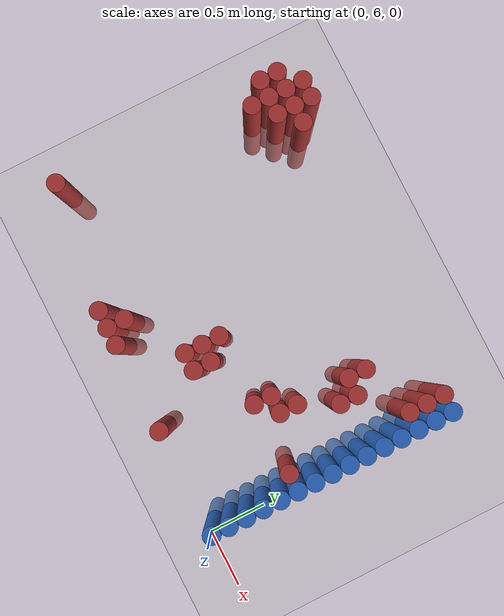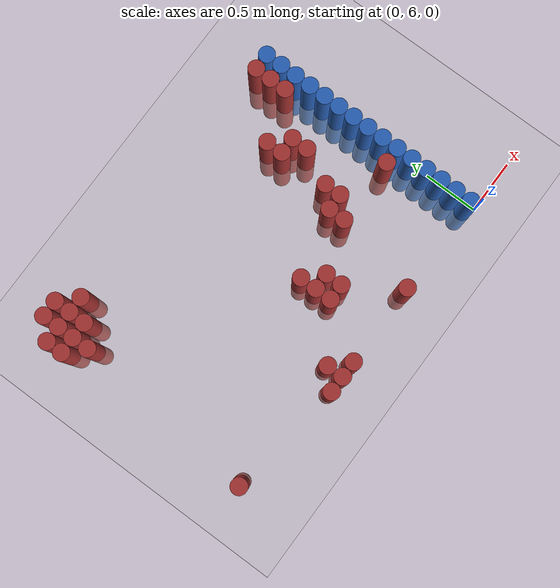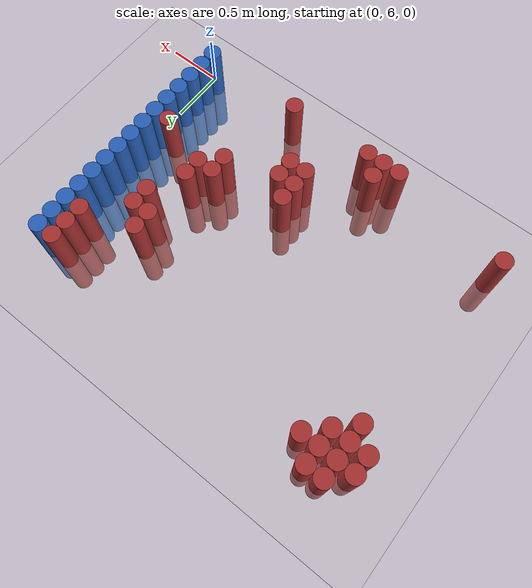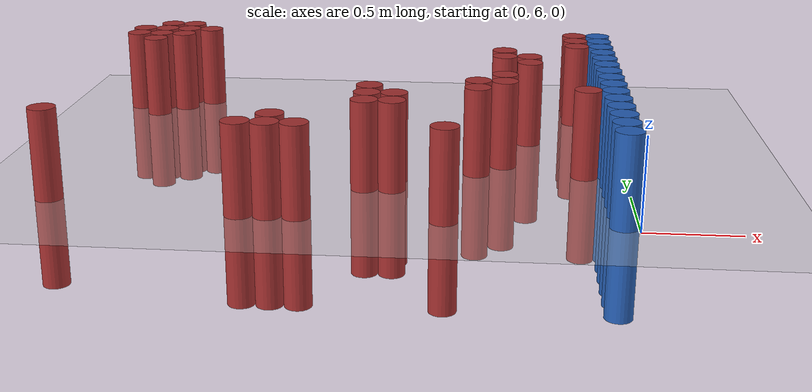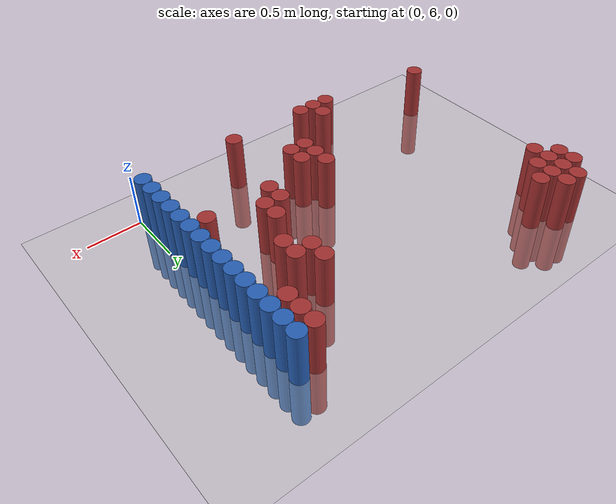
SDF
<sdf version="1.6">
 <world name="default">
  <model name="ground_plane">
   <static>1</static>
   <link name="link">
    <collision name="collision">
     <geometry><plane><normal>0 0 1</normal><size>100 100</size></plane></geometry>
     <surface><friction><ode><mu>100</mu><mu2>50</mu2></ode></friction></surface>
    </collision>
    <visual name="visual">
     <cast_shadows>0</cast_shadows>
     <geometry><plane><normal>0 0 1</normal><size>100 100</size></plane></geometry>
     <material>
      <script><uri>file://media/materials/scripts/gazebo.material</uri><name>Gazebo/Grey</name></script>
     </material>
    </visual>
   </link>
  </model>
  <model name="unit_cylinder_214">
   <static>1</static>
   <pose>-3.075000 6.225000 0.000000 0.000000 0.000000 0.000000</pose>
   <link name="link">
    <inertial>
     <mass>1</mass>
     <inertia><ixx>0.145833</ixx><ixy>0</ixy><ixz>0</ixz><iyy>0.145833</iyy><iyz>0</iyz><izz>0.125</izz></inertia>
    </inertial>
    <collision name="collision">
     <geometry><cylinder><radius>0.075000</radius><length>1</length></cylinder></geometry>
    </collision>
    <visual name="visual">
     <geometry><cylinder><radius>0.075000</radius><length>1</length></cylinder></geometry>
     <material>
      <ambient>0.648000 0.192000 0.192000 1</ambient>
      <diffuse>0.648000 0.192000 0.192000 1</diffuse>
     </material>
     <material>
      <script><name>Gazebo/Grey</name><uri>file://media/materials/scripts/gazebo.material</uri></script>
     </material>
    </visual>
   </link>
  </model>
  <model name="unit_cylinder_215">
   <static>1</static>
   <pose>-3.075000 8.025000 0.000000 0.000000 0.000000 0.000000</pose>
   <link name="link">
    <inertial>
     <mass>1</mass>
     <inertia><ixx>0.145833</ixx><ixy>0</ixy><ixz>0</ixz><iyy>0.145833</iyy><iyz>0</iyz><izz>0.125</izz></inertia>
    </inertial>
    <collision name="collision">
     <geometry><cylinder><radius>0.075000</radius><length>1</length></cylinder></geometry>
    </collision>
    <visual name="visual">
     <geometry><cylinder><radius>0.075000</radius><length>1</length></cylinder></geometry>
     <material>
      <ambient>0.648000 0.192000 0.192000 1</ambient>
      <diffuse>0.648000 0.192000 0.192000 1</diffuse>
     </material>
     <material>
      <script><name>Gazebo/Grey</name><uri>file://media/materials/scripts/gazebo.material</uri></script>
     </material>
    </visual>
   </link>
  </model>
  <model name="unit_cylinder_216">
   <static>1</static>
   <pose>-3.075000 8.175000 0.000000 0.000000 0.000000 0.000000</pose>
   <link name="link">
    <inertial>
     <mass>1</mass>
     <inertia><ixx>0.145833</ixx><ixy>0</ixy><ixz>0</ixz><iyy>0.145833</iyy><iyz>0</iyz><izz>0.125</izz></inertia>
    </inertial>
    <collision name="collision">
     <geometry><cylinder><radius>0.075000</radius><length>1</length></cylinder></geometry>
    </collision>
    <visual name="visual">
     <geometry><cylinder><radius>0.075000</radius><length>1</length></cylinder></geometry>
     <material>
      <ambient>0.648000 0.192000 0.192000 1</ambient>
      <diffuse>0.648000 0.192000 0.192000 1</diffuse>
     </material>
     <material>
      <script><name>Gazebo/Grey</name><uri>file://media/materials/scripts/gazebo.material</uri></script>
     </material>
    </visual>
   </link>
  </model>
  <model name="unit_cylinder_223">
   <static>1</static>
   <pose>-2.925000 7.875000 0.000000 0.000000 0.000000 0.000000</pose>
   <link name="link">
    <inertial>
     <mass>1</mass>
     <inertia><ixx>0.145833</ixx><ixy>0</ixy><ixz>0</ixz><iyy>0.145833</iyy><iyz>0</iyz><izz>0.125</izz></inertia>
    </inertial>
    <collision name="collision">
     <geometry><cylinder><radius>0.075000</radius><length>1</length></cylinder></geometry>
    </collision>
    <visual name="visual">
     <geometry><cylinder><radius>0.075000</radius><length>1</length></cylinder></geometry>
     <material>
      <ambient>0.648000 0.192000 0.192000 1</ambient>
      <diffuse>0.648000 0.192000 0.192000 1</diffuse>
     </material>
     <material>
      <script><name>Gazebo/Grey</name><uri>file://media/materials/scripts/gazebo.material</uri></script>
     </material>
    </visual>
   </link>
  </model>
  <model name="unit_cylinder_224">
   <static>1</static>
   <pose>-2.925000 8.025000 0.000000 0.000000 0.000000 0.000000</pose>
   <link name="link">
    <inertial>
     <mass>1</mass>
     <inertia><ixx>0.145833</ixx><ixy>0</ixy><ixz>0</ixz><iyy>0.145833</iyy><iyz>0</iyz><izz>0.125</izz></inertia>
    </inertial>
    <collision name="collision">
     <geometry><cylinder><radius>0.075000</radius><length>1</length></cylinder></geometry>
    </collision>
    <visual name="visual">
     <geometry><cylinder><radius>0.075000</radius><length>1</length></cylinder></geometry>
     <material>
      <ambient>0.648000 0.192000 0.192000 1</ambient>
      <diffuse>0.648000 0.192000 0.192000 1</diffuse>
     </material>
     <material>
      <script><name>Gazebo/Grey</name><uri>file://media/materials/scripts/gazebo.material</uri></script>
     </material>
    </visual>
   </link>
  </model>
  <model name="unit_cylinder_225">
   <static>1</static>
   <pose>-2.925000 8.175000 0.000000 0.000000 0.000000 0.000000</pose>
   <link name="link">
    <inertial>
     <mass>1</mass>
     <inertia><ixx>0.145833</ixx><ixy>0</ixy><ixz>0</ixz><iyy>0.145833</iyy><iyz>0</iyz><izz>0.125</izz></inertia>
    </inertial>
    <collision name="collision">
     <geometry><cylinder><radius>0.075000</radius><length>1</length></cylinder></geometry>
    </collision>
    <visual name="visual">
     <geometry><cylinder><radius>0.075000</radius><length>1</length></cylinder></geometry>
     <material>
      <ambient>0.648000 0.192000 0.192000 1</ambient>
      <diffuse>0.648000 0.192000 0.192000 1</diffuse>
     </material>
     <material>
      <script><name>Gazebo/Grey</name><uri>file://media/materials/scripts/gazebo.material</uri></script>
     </material>
    </visual>
   </link>
  </model>
  <model name="unit_cylinder_226">
   <static>1</static>
   <pose>-2.925000 8.325000 0.000000 0.000000 0.000000 0.000000</pose>
   <link name="link">
    <inertial>
     <mass>1</mass>
     <inertia><ixx>0.145833</ixx><ixy>0</ixy><ixz>0</ixz><iyy>0.145833</iyy><iyz>0</iyz><izz>0.125</izz></inertia>
    </inertial>
    <collision name="collision">
     <geometry><cylinder><radius>0.075000</radius><length>1</length></cylinder></geometry>
    </collision>
    <visual name="visual">
     <geometry><cylinder><radius>0.075000</radius><length>1</length></cylinder></geometry>
     <material>
      <ambient>0.648000 0.192000 0.192000 1</ambient>
      <diffuse>0.648000 0.192000 0.192000 1</diffuse>
     </material>
     <material>
      <script><name>Gazebo/Grey</name><uri>file://media/materials/scripts/gazebo.material</uri></script>
     </material>
    </visual>
   </link>
  </model>
  <model name="unit_cylinder_229">
   <static>1</static>
   <pose>-2.775000 8.025000 0.000000 0.000000 0.000000 0.000000</pose>
   <link name="link">
    <inertial>
     <mass>1</mass>
     <inertia><ixx>0.145833</ixx><ixy>0</ixy><ixz>0</ixz><iyy>0.145833</iyy><iyz>0</iyz><izz>0.125</izz></inertia>
    </inertial>
    <collision name="collision">
     <geometry><cylinder><radius>0.075000</radius><length>1</length></cylinder></geometry>
    </collision>
    <visual name="visual">
     <geometry><cylinder><radius>0.075000</radius><length>1</length></cylinder></geometry>
     <material>
      <ambient>0.648000 0.192000 0.192000 1</ambient>
      <diffuse>0.648000 0.192000 0.192000 1</diffuse>
     </material>
     <material>
      <script><name>Gazebo/Grey</name><uri>file://media/materials/scripts/gazebo.material</uri></script>
     </material>
    </visual>
   </link>
  </model>
  <model name="unit_cylinder_230">
   <static>1</static>
   <pose>-2.775000 8.175000 0.000000 0.000000 0.000000 0.000000</pose>
   <link name="link">
    <inertial>
     <mass>1</mass>
     <inertia><ixx>0.145833</ixx><ixy>0</ixy><ixz>0</ixz><iyy>0.145833</iyy><iyz>0</iyz><izz>0.125</izz></inertia>
    </inertial>
    <collision name="collision">
     <geometry><cylinder><radius>0.075000</radius><length>1</length></cylinder></geometry>
    </collision>
    <visual name="visual">
     <geometry><cylinder><radius>0.075000</radius><length>1</length></cylinder></geometry>
     <material>
      <ambient>0.648000 0.192000 0.192000 1</ambient>
      <diffuse>0.648000 0.192000 0.192000 1</diffuse>
     </material>
     <material>
      <script><name>Gazebo/Grey</name><uri>file://media/materials/scripts/gazebo.material</uri></script>
     </material>
    </visual>
   </link>
  </model>
  <model name="unit_cylinder_231">
   <static>1</static>
   <pose>-2.775000 8.325000 0.000000 0.000000 0.000000 0.000000</pose>
   <link name="link">
    <inertial>
     <mass>1</mass>
     <inertia><ixx>0.145833</ixx><ixy>0</ixy><ixz>0</ixz><iyy>0.145833</iyy><iyz>0</iyz><izz>0.125</izz></inertia>
    </inertial>
    <collision name="collision">
     <geometry><cylinder><radius>0.075000</radius><length>1</length></cylinder></geometry>
    </collision>
    <visual name="visual">
     <geometry><cylinder><radius>0.075000</radius><length>1</length></cylinder></geometry>
     <material>
      <ambient>0.648000 0.192000 0.192000 1</ambient>
      <diffuse>0.648000 0.192000 0.192000 1</diffuse>
     </material>
     <material>
      <script><name>Gazebo/Grey</name><uri>file://media/materials/scripts/gazebo.material</uri></script>
     </material>
    </visual>
   </link>
  </model>
  <model name="unit_cylinder_236">
   <static>1</static>
   <pose>-2.625000 8.175000 0.000000 0.000000 0.000000 0.000000</pose>
   <link name="link">
    <inertial>
     <mass>1</mass>
     <inertia><ixx>0.145833</ixx><ixy>0</ixy><ixz>0</ixz><iyy>0.145833</iyy><iyz>0</iyz><izz>0.125</izz></inertia>
    </inertial>
    <collision name="collision">
     <geometry><cylinder><radius>0.075000</radius><length>1</length></cylinder></geometry>
    </collision>
    <visual name="visual">
     <geometry><cylinder><radius>0.075000</radius><length>1</length></cylinder></geometry>
     <material>
      <ambient>0.648000 0.192000 0.192000 1</ambient>
      <diffuse>0.648000 0.192000 0.192000 1</diffuse>
     </material>
     <material>
      <script><name>Gazebo/Grey</name><uri>file://media/materials/scripts/gazebo.material</uri></script>
     </material>
    </visual>
   </link>
  </model>
  <model name="unit_cylinder_240">
   <static>1</static>
   <pose>-2.025000 6.075000 0.000000 0.000000 0.000000 0.000000</pose>
   <link name="link">
    <inertial>
     <mass>1</mass>
     <inertia><ixx>0.145833</ixx><ixy>0</ixy><ixz>0</ixz><iyy>0.145833</iyy><iyz>0</iyz><izz>0.125</izz></inertia>
    </inertial>
    <collision name="collision">
     <geometry><cylinder><radius>0.075000</radius><length>1</length></cylinder></geometry>
    </collision>
    <visual name="visual">
     <geometry><cylinder><radius>0.075000</radius><length>1</length></cylinder></geometry>
     <material>
      <ambient>0.648000 0.192000 0.192000 1</ambient>
      <diffuse>0.648000 0.192000 0.192000 1</diffuse>
     </material>
     <material>
      <script><name>Gazebo/Grey</name><uri>file://media/materials/scripts/gazebo.material</uri></script>
     </material>
    </visual>
   </link>
  </model>
  <model name="unit_cylinder_241">
   <static>1</static>
   <pose>-1.875000 6.075000 0.000000 0.000000 0.000000 0.000000</pose>
   <link name="link">
    <inertial>
     <mass>1</mass>
     <inertia><ixx>0.145833</ixx><ixy>0</ixy><ixz>0</ixz><iyy>0.145833</iyy><iyz>0</iyz><izz>0.125</izz></inertia>
    </inertial>
    <collision name="collision">
     <geometry><cylinder><radius>0.075000</radius><length>1</length></cylinder></geometry>
    </collision>
    <visual name="visual">
     <geometry><cylinder><radius>0.075000</radius><length>1</length></cylinder></geometry>
     <material>
      <ambient>0.648000 0.192000 0.192000 1</ambient>
      <diffuse>0.648000 0.192000 0.192000 1</diffuse>
     </material>
     <material>
      <script><name>Gazebo/Grey</name><uri>file://media/materials/scripts/gazebo.material</uri></script>
     </material>
    </visual>
   </link>
  </model>
  <model name="unit_cylinder_242">
   <static>1</static>
   <pose>-1.875000 6.225000 0.000000 0.000000 0.000000 0.000000</pose>
   <link name="link">
    <inertial>
     <mass>1</mass>
     <inertia><ixx>0.145833</ixx><ixy>0</ixy><ixz>0</ixz><iyy>0.145833</iyy><iyz>0</iyz><izz>0.125</izz></inertia>
    </inertial>
    <collision name="collision">
     <geometry><cylinder><radius>0.075000</radius><length>1</length></cylinder></geometry>
    </collision>
    <visual name="visual">
     <geometry><cylinder><radius>0.075000</radius><length>1</length></cylinder></geometry>
     <material>
      <ambient>0.648000 0.192000 0.192000 1</ambient>
      <diffuse>0.648000 0.192000 0.192000 1</diffuse>
     </material>
     <material>
      <script><name>Gazebo/Grey</name><uri>file://media/materials/scripts/gazebo.material</uri></script>
     </material>
    </visual>
   </link>
  </model>
  <model name="unit_cylinder_243">
   <static>1</static>
   <pose>-1.725000 6.075000 0.000000 0.000000 0.000000 0.000000</pose>
   <link name="link">
    <inertial>
     <mass>1</mass>
     <inertia><ixx>0.145833</ixx><ixy>0</ixy><ixz>0</ixz><iyy>0.145833</iyy><iyz>0</iyz><izz>0.125</izz></inertia>
    </inertial>
    <collision name="collision">
     <geometry><cylinder><radius>0.075000</radius><length>1</length></cylinder></geometry>
    </collision>
    <visual name="visual">
     <geometry><cylinder><radius>0.075000</radius><length>1</length></cylinder></geometry>
     <material>
      <ambient>0.648000 0.192000 0.192000 1</ambient>
      <diffuse>0.648000 0.192000 0.192000 1</diffuse>
     </material>
     <material>
      <script><name>Gazebo/Grey</name><uri>file://media/materials/scripts/gazebo.material</uri></script>
     </material>
    </visual>
   </link>
  </model>
  <model name="unit_cylinder_246">
   <static>1</static>
   <pose>-1.425000 6.525000 0.000000 0.000000 0.000000 0.000000</pose>
   <link name="link">
    <inertial>
     <mass>1</mass>
     <inertia><ixx>0.145833</ixx><ixy>0</ixy><ixz>0</ixz><iyy>0.145833</iyy><iyz>0</iyz><izz>0.125</izz></inertia>
    </inertial>
    <collision name="collision">
     <geometry><cylinder><radius>0.075000</radius><length>1</length></cylinder></geometry>
    </collision>
    <visual name="visual">
     <geometry><cylinder><radius>0.075000</radius><length>1</length></cylinder></geometry>
     <material>
      <ambient>0.648000 0.192000 0.192000 1</ambient>
      <diffuse>0.648000 0.192000 0.192000 1</diffuse>
     </material>
     <material>
      <script><name>Gazebo/Grey</name><uri>file://media/materials/scripts/gazebo.material</uri></script>
     </material>
    </visual>
   </link>
  </model>
  <model name="unit_cylinder_247">
   <static>1</static>
   <pose>-1.425000 6.675000 0.000000 0.000000 0.000000 0.000000</pose>
   <link name="link">
    <inertial>
     <mass>1</mass>
     <inertia><ixx>0.145833</ixx><ixy>0</ixy><ixz>0</ixz><iyy>0.145833</iyy><iyz>0</iyz><izz>0.125</izz></inertia>
    </inertial>
    <collision name="collision">
     <geometry><cylinder><radius>0.075000</radius><length>1</length></cylinder></geometry>
    </collision>
    <visual name="visual">
     <geometry><cylinder><radius>0.075000</radius><length>1</length></cylinder></geometry>
     <material>
      <ambient>0.648000 0.192000 0.192000 1</ambient>
      <diffuse>0.648000 0.192000 0.192000 1</diffuse>
     </material>
     <material>
      <script><name>Gazebo/Grey</name><uri>file://media/materials/scripts/gazebo.material</uri></script>
     </material>
    </visual>
   </link>
  </model>
  <model name="unit_cylinder_248">
   <static>1</static>
   <pose>-1.425000 6.825000 0.000000 0.000000 0.000000 0.000000</pose>
   <link name="link">
    <inertial>
     <mass>1</mass>
     <inertia><ixx>0.145833</ixx><ixy>0</ixy><ixz>0</ixz><iyy>0.145833</iyy><iyz>0</iyz><izz>0.125</izz></inertia>
    </inertial>
    <collision name="collision">
     <geometry><cylinder><radius>0.075000</radius><length>1</length></cylinder></geometry>
    </collision>
    <visual name="visual">
     <geometry><cylinder><radius>0.075000</radius><length>1</length></cylinder></geometry>
     <material>
      <ambient>0.648000 0.192000 0.192000 1</ambient>
      <diffuse>0.648000 0.192000 0.192000 1</diffuse>
     </material>
     <material>
      <script><name>Gazebo/Grey</name><uri>file://media/materials/scripts/gazebo.material</uri></script>
     </material>
    </visual>
   </link>
  </model>
  <model name="unit_cylinder_250">
   <static>1</static>
   <pose>-1.275000 6.525000 0.000000 0.000000 0.000000 0.000000</pose>
   <link name="link">
    <inertial>
     <mass>1</mass>
     <inertia><ixx>0.145833</ixx><ixy>0</ixy><ixz>0</ixz><iyy>0.145833</iyy><iyz>0</iyz><izz>0.125</izz></inertia>
    </inertial>
    <collision name="collision">
     <geometry><cylinder><radius>0.075000</radius><length>1</length></cylinder></geometry>
    </collision>
    <visual name="visual">
     <geometry><cylinder><radius>0.075000</radius><length>1</length></cylinder></geometry>
     <material>
      <ambient>0.648000 0.192000 0.192000 1</ambient>
      <diffuse>0.648000 0.192000 0.192000 1</diffuse>
     </material>
     <material>
      <script><name>Gazebo/Grey</name><uri>file://media/materials/scripts/gazebo.material</uri></script>
     </material>
    </visual>
   </link>
  </model>
  <model name="unit_cylinder_251">
   <static>1</static>
   <pose>-1.275000 6.675000 0.000000 0.000000 0.000000 0.000000</pose>
   <link name="link">
    <inertial>
     <mass>1</mass>
     <inertia><ixx>0.145833</ixx><ixy>0</ixy><ixz>0</ixz><iyy>0.145833</iyy><iyz>0</iyz><izz>0.125</izz></inertia>
    </inertial>
    <collision name="collision">
     <geometry><cylinder><radius>0.075000</radius><length>1</length></cylinder></geometry>
    </collision>
    <visual name="visual">
     <geometry><cylinder><radius>0.075000</radius><length>1</length></cylinder></geometry>
     <material>
      <ambient>0.648000 0.192000 0.192000 1</ambient>
      <diffuse>0.648000 0.192000 0.192000 1</diffuse>
     </material>
     <material>
      <script><name>Gazebo/Grey</name><uri>file://media/materials/scripts/gazebo.material</uri></script>
     </material>
    </visual>
   </link>
  </model>
  <model name="unit_cylinder_262">
   <static>1</static>
   <pose>-0.975000 6.075000 0.000000 0.000000 0.000000 0.000000</pose>
   <link name="link">
    <inertial>
     <mass>1</mass>
     <inertia><ixx>0.145833</ixx><ixy>0</ixy><ixz>0</ixz><iyy>0.145833</iyy><iyz>0</iyz><izz>0.125</izz></inertia>
    </inertial>
    <collision name="collision">
     <geometry><cylinder><radius>0.075000</radius><length>1</length></cylinder></geometry>
    </collision>
    <visual name="visual">
     <geometry><cylinder><radius>0.075000</radius><length>1</length></cylinder></geometry>
     <material>
      <ambient>0.648000 0.192000 0.192000 1</ambient>
      <diffuse>0.648000 0.192000 0.192000 1</diffuse>
     </material>
     <material>
      <script><name>Gazebo/Grey</name><uri>file://media/materials/scripts/gazebo.material</uri></script>
     </material>
    </visual>
   </link>
  </model>
  <model name="unit_cylinder_272">
   <static>1</static>
   <pose>-0.825000 6.825000 0.000000 0.000000 0.000000 0.000000</pose>
   <link name="link">
    <inertial>
     <mass>1</mass>
     <inertia><ixx>0.145833</ixx><ixy>0</ixy><ixz>0</ixz><iyy>0.145833</iyy><iyz>0</iyz><izz>0.125</izz></inertia>
    </inertial>
    <collision name="collision">
     <geometry><cylinder><radius>0.075000</radius><length>1</length></cylinder></geometry>
    </collision>
    <visual name="visual">
     <geometry><cylinder><radius>0.075000</radius><length>1</length></cylinder></geometry>
     <material>
      <ambient>0.648000 0.192000 0.192000 1</ambient>
      <diffuse>0.648000 0.192000 0.192000 1</diffuse>
     </material>
     <material>
      <script><name>Gazebo/Grey</name><uri>file://media/materials/scripts/gazebo.material</uri></script>
     </material>
    </visual>
   </link>
  </model>
  <model name="unit_cylinder_273">
   <static>1</static>
   <pose>-0.825000 6.975000 0.000000 0.000000 0.000000 0.000000</pose>
   <link name="link">
    <inertial>
     <mass>1</mass>
     <inertia><ixx>0.145833</ixx><ixy>0</ixy><ixz>0</ixz><iyy>0.145833</iyy><iyz>0</iyz><izz>0.125</izz></inertia>
    </inertial>
    <collision name="collision">
     <geometry><cylinder><radius>0.075000</radius><length>1</length></cylinder></geometry>
    </collision>
    <visual name="visual">
     <geometry><cylinder><radius>0.075000</radius><length>1</length></cylinder></geometry>
     <material>
      <ambient>0.648000 0.192000 0.192000 1</ambient>
      <diffuse>0.648000 0.192000 0.192000 1</diffuse>
     </material>
     <material>
      <script><name>Gazebo/Grey</name><uri>file://media/materials/scripts/gazebo.material</uri></script>
     </material>
    </visual>
   </link>
  </model>
  <model name="unit_cylinder_276">
   <static>1</static>
   <pose>-0.675000 6.975000 0.000000 0.000000 0.000000 0.000000</pose>
   <link name="link">
    <inertial>
     <mass>1</mass>
     <inertia><ixx>0.145833</ixx><ixy>0</ixy><ixz>0</ixz><iyy>0.145833</iyy><iyz>0</iyz><izz>0.125</izz></inertia>
    </inertial>
    <collision name="collision">
     <geometry><cylinder><radius>0.075000</radius><length>1</length></cylinder></geometry>
    </collision>
    <visual name="visual">
     <geometry><cylinder><radius>0.075000</radius><length>1</length></cylinder></geometry>
     <material>
      <ambient>0.648000 0.192000 0.192000 1</ambient>
      <diffuse>0.648000 0.192000 0.192000 1</diffuse>
     </material>
     <material>
      <script><name>Gazebo/Grey</name><uri>file://media/materials/scripts/gazebo.material</uri></script>
     </material>
    </visual>
   </link>
  </model>
  <model name="unit_cylinder_277">
   <static>1</static>
   <pose>-0.675000 7.125000 0.000000 0.000000 0.000000 0.000000</pose>
   <link name="link">
    <inertial>
     <mass>1</mass>
     <inertia><ixx>0.145833</ixx><ixy>0</ixy><ixz>0</ixz><iyy>0.145833</iyy><iyz>0</iyz><izz>0.125</izz></inertia>
    </inertial>
    <collision name="collision">
     <geometry><cylinder><radius>0.075000</radius><length>1</length></cylinder></geometry>
    </collision>
    <visual name="visual">
     <geometry><cylinder><radius>0.075000</radius><length>1</length></cylinder></geometry>
     <material>
      <ambient>0.648000 0.192000 0.192000 1</ambient>
      <diffuse>0.648000 0.192000 0.192000 1</diffuse>
     </material>
     <material>
      <script><name>Gazebo/Grey</name><uri>file://media/materials/scripts/gazebo.material</uri></script>
     </material>
    </visual>
   </link>
  </model>
  <model name="unit_cylinder_278">
   <static>1</static>
   <pose>-0.675000 7.575000 0.000000 0.000000 0.000000 0.000000</pose>
   <link name="link">
    <inertial>
     <mass>1</mass>
     <inertia><ixx>0.145833</ixx><ixy>0</ixy><ixz>0</ixz><iyy>0.145833</iyy><iyz>0</iyz><izz>0.125</izz></inertia>
    </inertial>
    <collision name="collision">
     <geometry><cylinder><radius>0.075000</radius><length>1</length></cylinder></geometry>
    </collision>
    <visual name="visual">
     <geometry><cylinder><radius>0.075000</radius><length>1</length></cylinder></geometry>
     <material>
      <ambient>0.648000 0.192000 0.192000 1</ambient>
      <diffuse>0.648000 0.192000 0.192000 1</diffuse>
     </material>
     <material>
      <script><name>Gazebo/Grey</name><uri>file://media/materials/scripts/gazebo.material</uri></script>
     </material>
    </visual>
   </link>
  </model>
  <model name="unit_cylinder_279">
   <static>1</static>
   <pose>-0.675000 7.725000 0.000000 0.000000 0.000000 0.000000</pose>
   <link name="link">
    <inertial>
     <mass>1</mass>
     <inertia><ixx>0.145833</ixx><ixy>0</ixy><ixz>0</ixz><iyy>0.145833</iyy><iyz>0</iyz><izz>0.125</izz></inertia>
    </inertial>
    <collision name="collision">
     <geometry><cylinder><radius>0.075000</radius><length>1</length></cylinder></geometry>
    </collision>
    <visual name="visual">
     <geometry><cylinder><radius>0.075000</radius><length>1</length></cylinder></geometry>
     <material>
      <ambient>0.648000 0.192000 0.192000 1</ambient>
      <diffuse>0.648000 0.192000 0.192000 1</diffuse>
     </material>
     <material>
      <script><name>Gazebo/Grey</name><uri>file://media/materials/scripts/gazebo.material</uri></script>
     </material>
    </visual>
   </link>
  </model>
  <model name="unit_cylinder_283">
   <static>1</static>
   <pose>-0.525000 7.425000 0.000000 0.000000 0.000000 0.000000</pose>
   <link name="link">
    <inertial>
     <mass>1</mass>
     <inertia><ixx>0.145833</ixx><ixy>0</ixy><ixz>0</ixz><iyy>0.145833</iyy><iyz>0</iyz><izz>0.125</izz></inertia>
    </inertial>
    <collision name="collision">
     <geometry><cylinder><radius>0.075000</radius><length>1</length></cylinder></geometry>
    </collision>
    <visual name="visual">
     <geometry><cylinder><radius>0.075000</radius><length>1</length></cylinder></geometry>
     <material>
      <ambient>0.648000 0.192000 0.192000 1</ambient>
      <diffuse>0.648000 0.192000 0.192000 1</diffuse>
     </material>
     <material>
      <script><name>Gazebo/Grey</name><uri>file://media/materials/scripts/gazebo.material</uri></script>
     </material>
    </visual>
   </link>
  </model>
  <model name="unit_cylinder_284">
   <static>1</static>
   <pose>-0.525000 7.575000 0.000000 0.000000 0.000000 0.000000</pose>
   <link name="link">
    <inertial>
     <mass>1</mass>
     <inertia><ixx>0.145833</ixx><ixy>0</ixy><ixz>0</ixz><iyy>0.145833</iyy><iyz>0</iyz><izz>0.125</izz></inertia>
    </inertial>
    <collision name="collision">
     <geometry><cylinder><radius>0.075000</radius><length>1</length></cylinder></geometry>
    </collision>
    <visual name="visual">
     <geometry><cylinder><radius>0.075000</radius><length>1</length></cylinder></geometry>
     <material>
      <ambient>0.648000 0.192000 0.192000 1</ambient>
      <diffuse>0.648000 0.192000 0.192000 1</diffuse>
     </material>
     <material>
      <script><name>Gazebo/Grey</name><uri>file://media/materials/scripts/gazebo.material</uri></script>
     </material>
    </visual>
   </link>
  </model>
  <model name="unit_cylinder_294">
   <static>1</static>
   <pose>-0.225000 6.825000 0.000000 0.000000 0.000000 0.000000</pose>
   <link name="link">
    <inertial>
     <mass>1</mass>
     <inertia><ixx>0.145833</ixx><ixy>0</ixy><ixz>0</ixz><iyy>0.145833</iyy><iyz>0</iyz><izz>0.125</izz></inertia>
    </inertial>
    <collision name="collision">
     <geometry><cylinder><radius>0.075000</radius><length>1</length></cylinder></geometry>
    </collision>
    <visual name="visual">
     <geometry><cylinder><radius>0.075000</radius><length>1</length></cylinder></geometry>
     <material>
      <ambient>0.648000 0.192000 0.192000 1</ambient>
      <diffuse>0.648000 0.192000 0.192000 1</diffuse>
     </material>
     <material>
      <script><name>Gazebo/Grey</name><uri>file://media/materials/scripts/gazebo.material</uri></script>
     </material>
    </visual>
   </link>
  </model>
  <model name="unit_cylinder_295">
   <static>1</static>
   <pose>-0.225000 7.875000 0.000000 0.000000 0.000000 0.000000</pose>
   <link name="link">
    <inertial>
     <mass>1</mass>
     <inertia><ixx>0.145833</ixx><ixy>0</ixy><ixz>0</ixz><iyy>0.145833</iyy><iyz>0</iyz><izz>0.125</izz></inertia>
    </inertial>
    <collision name="collision">
     <geometry><cylinder><radius>0.075000</radius><length>1</length></cylinder></geometry>
    </collision>
    <visual name="visual">
     <geometry><cylinder><radius>0.075000</radius><length>1</length></cylinder></geometry>
     <material>
      <ambient>0.648000 0.192000 0.192000 1</ambient>
      <diffuse>0.648000 0.192000 0.192000 1</diffuse>
     </material>
     <material>
      <script><name>Gazebo/Grey</name><uri>file://media/materials/scripts/gazebo.material</uri></script>
     </material>
    </visual>
   </link>
  </model>
  <model name="unit_cylinder_296">
   <static>1</static>
   <pose>-0.225000 8.025000 0.000000 0.000000 0.000000 0.000000</pose>
   <link name="link">
    <inertial>
     <mass>1</mass>
     <inertia><ixx>0.145833</ixx><ixy>0</ixy><ixz>0</ixz><iyy>0.145833</iyy><iyz>0</iyz><izz>0.125</izz></inertia>
    </inertial>
    <collision name="collision">
     <geometry><cylinder><radius>0.075000</radius><length>1</length></cylinder></geometry>
    </collision>
    <visual name="visual">
     <geometry><cylinder><radius>0.075000</radius><length>1</length></cylinder></geometry>
     <material>
      <ambient>0.648000 0.192000 0.192000 1</ambient>
      <diffuse>0.648000 0.192000 0.192000 1</diffuse>
     </material>
     <material>
      <script><name>Gazebo/Grey</name><uri>file://media/materials/scripts/gazebo.material</uri></script>
     </material>
    </visual>
   </link>
  </model>
  <model name="unit_cylinder_297">
   <static>1</static>
   <pose>-0.225000 8.175000 0.000000 0.000000 0.000000 0.000000</pose>
   <link name="link">
    <inertial>
     <mass>1</mass>
     <inertia><ixx>0.145833</ixx><ixy>0</ixy><ixz>0</ixz><iyy>0.145833</iyy><iyz>0</iyz><izz>0.125</izz></inertia>
    </inertial>
    <collision name="collision">
     <geometry><cylinder><radius>0.075000</radius><length>1</length></cylinder></geometry>
    </collision>
    <visual name="visual">
     <geometry><cylinder><radius>0.075000</radius><length>1</length></cylinder></geometry>
     <material>
      <ambient>0.648000 0.192000 0.192000 1</ambient>
      <diffuse>0.648000 0.192000 0.192000 1</diffuse>
     </material>
     <material>
      <script><name>Gazebo/Grey</name><uri>file://media/materials/scripts/gazebo.material</uri></script>
     </material>
    </visual>
   </link>
  </model>
  <model name="unit_cylinder_310">
   <static>1</static>
   <pose>-0.075000 6.075000 0.000000 0.000000 0.000000 0.000000</pose>
   <link name="link">
    <inertial>
     <mass>1</mass>
     <inertia><ixx>0.145833</ixx><ixy>0</ixy><ixz>0</ixz><iyy>0.145833</iyy><iyz>0</iyz><izz>0.125</izz></inertia>
    </inertial>
    <collision name="collision">
     <geometry><cylinder><radius>0.075000</radius><length>1</length></cylinder></geometry>
    </collision>
    <visual name="visual">
     <geometry><cylinder><radius>0.075000</radius><length>1</length></cylinder></geometry>
     <material>
      <ambient>0.152000 0.379000 0.720000 1</ambient>
      <diffuse>0.152000 0.379000 0.720000 1</diffuse>
     </material>
     <material>
      <script><name>Gazebo/Grey</name><uri>file://media/materials/scripts/gazebo.material</uri></script>
     </material>
    </visual>
   </link>
  </model>
  <model name="unit_cylinder_311">
   <static>1</static>
   <pose>-0.075000 6.225000 0.000000 0.000000 0.000000 0.000000</pose>
   <link name="link">
    <inertial>
     <mass>1</mass>
     <inertia><ixx>0.145833</ixx><ixy>0</ixy><ixz>0</ixz><iyy>0.145833</iyy><iyz>0</iyz><izz>0.125</izz></inertia>
    </inertial>
    <collision name="collision">
     <geometry><cylinder><radius>0.075000</radius><length>1</length></cylinder></geometry>
    </collision>
    <visual name="visual">
     <geometry><cylinder><radius>0.075000</radius><length>1</length></cylinder></geometry>
     <material>
      <ambient>0.152000 0.379000 0.720000 1</ambient>
      <diffuse>0.152000 0.379000 0.720000 1</diffuse>
     </material>
     <material>
      <script><name>Gazebo/Grey</name><uri>file://media/materials/scripts/gazebo.material</uri></script>
     </material>
    </visual>
   </link>
  </model>
  <model name="unit_cylinder_312">
   <static>1</static>
   <pose>-0.075000 6.375000 0.000000 0.000000 0.000000 0.000000</pose>
   <link name="link">
    <inertial>
     <mass>1</mass>
     <inertia><ixx>0.145833</ixx><ixy>0</ixy><ixz>0</ixz><iyy>0.145833</iyy><iyz>0</iyz><izz>0.125</izz></inertia>
    </inertial>
    <collision name="collision">
     <geometry><cylinder><radius>0.075000</radius><length>1</length></cylinder></geometry>
    </collision>
    <visual name="visual">
     <geometry><cylinder><radius>0.075000</radius><length>1</length></cylinder></geometry>
     <material>
      <ambient>0.152000 0.379000 0.720000 1</ambient>
      <diffuse>0.152000 0.379000 0.720000 1</diffuse>
     </material>
     <material>
      <script><name>Gazebo/Grey</name><uri>file://media/materials/scripts/gazebo.material</uri></script>
     </material>
    </visual>
   </link>
  </model>
  <model name="unit_cylinder_313">
   <static>1</static>
   <pose>-0.075000 6.525000 0.000000 0.000000 0.000000 0.000000</pose>
   <link name="link">
    <inertial>
     <mass>1</mass>
     <inertia><ixx>0.145833</ixx><ixy>0</ixy><ixz>0</ixz><iyy>0.145833</iyy><iyz>0</iyz><izz>0.125</izz></inertia>
    </inertial>
    <collision name="collision">
     <geometry><cylinder><radius>0.075000</radius><length>1</length></cylinder></geometry>
    </collision>
    <visual name="visual">
     <geometry><cylinder><radius>0.075000</radius><length>1</length></cylinder></geometry>
     <material>
      <ambient>0.152000 0.379000 0.720000 1</ambient>
      <diffuse>0.152000 0.379000 0.720000 1</diffuse>
     </material>
     <material>
      <script><name>Gazebo/Grey</name><uri>file://media/materials/scripts/gazebo.material</uri></script>
     </material>
    </visual>
   </link>
  </model>
  <model name="unit_cylinder_314">
   <static>1</static>
   <pose>-0.075000 6.675000 0.000000 0.000000 0.000000 0.000000</pose>
   <link name="link">
    <inertial>
     <mass>1</mass>
     <inertia><ixx>0.145833</ixx><ixy>0</ixy><ixz>0</ixz><iyy>0.145833</iyy><iyz>0</iyz><izz>0.125</izz></inertia>
    </inertial>
    <collision name="collision">
     <geometry><cylinder><radius>0.075000</radius><length>1</length></cylinder></geometry>
    </collision>
    <visual name="visual">
     <geometry><cylinder><radius>0.075000</radius><length>1</length></cylinder></geometry>
     <material>
      <ambient>0.152000 0.379000 0.720000 1</ambient>
      <diffuse>0.152000 0.379000 0.720000 1</diffuse>
     </material>
     <material>
      <script><name>Gazebo/Grey</name><uri>file://media/materials/scripts/gazebo.material</uri></script>
     </material>
    </visual>
   </link>
  </model>
  <model name="unit_cylinder_315">
   <static>1</static>
   <pose>-0.075000 6.825000 0.000000 0.000000 0.000000 0.000000</pose>
   <link name="link">
    <inertial>
     <mass>1</mass>
     <inertia><ixx>0.145833</ixx><ixy>0</ixy><ixz>0</ixz><iyy>0.145833</iyy><iyz>0</iyz><izz>0.125</izz></inertia>
    </inertial>
    <collision name="collision">
     <geometry><cylinder><radius>0.075000</radius><length>1</length></cylinder></geometry>
    </collision>
    <visual name="visual">
     <geometry><cylinder><radius>0.075000</radius><length>1</length></cylinder></geometry>
     <material>
      <ambient>0.152000 0.379000 0.720000 1</ambient>
      <diffuse>0.152000 0.379000 0.720000 1</diffuse>
     </material>
     <material>
      <script><name>Gazebo/Grey</name><uri>file://media/materials/scripts/gazebo.material</uri></script>
     </material>
    </visual>
   </link>
  </model>
  <model name="unit_cylinder_316">
   <static>1</static>
   <pose>-0.075000 6.975000 0.000000 0.000000 0.000000 0.000000</pose>
   <link name="link">
    <inertial>
     <mass>1</mass>
     <inertia><ixx>0.145833</ixx><ixy>0</ixy><ixz>0</ixz><iyy>0.145833</iyy><iyz>0</iyz><izz>0.125</izz></inertia>
    </inertial>
    <collision name="collision">
     <geometry><cylinder><radius>0.075000</radius><length>1</length></cylinder></geometry>
    </collision>
    <visual name="visual">
     <geometry><cylinder><radius>0.075000</radius><length>1</length></cylinder></geometry>
     <material>
      <ambient>0.152000 0.379000 0.720000 1</ambient>
      <diffuse>0.152000 0.379000 0.720000 1</diffuse>
     </material>
     <material>
      <script><name>Gazebo/Grey</name><uri>file://media/materials/scripts/gazebo.material</uri></script>
     </material>
    </visual>
   </link>
  </model>
  <model name="unit_cylinder_317">
   <static>1</static>
   <pose>-0.075000 7.125000 0.000000 0.000000 0.000000 0.000000</pose>
   <link name="link">
    <inertial>
     <mass>1</mass>
     <inertia><ixx>0.145833</ixx><ixy>0</ixy><ixz>0</ixz><iyy>0.145833</iyy><iyz>0</iyz><izz>0.125</izz></inertia>
    </inertial>
    <collision name="collision">
     <geometry><cylinder><radius>0.075000</radius><length>1</length></cylinder></geometry>
    </collision>
    <visual name="visual">
     <geometry><cylinder><radius>0.075000</radius><length>1</length></cylinder></geometry>
     <material>
      <ambient>0.152000 0.379000 0.720000 1</ambient>
      <diffuse>0.152000 0.379000 0.720000 1</diffuse>
     </material>
     <material>
      <script><name>Gazebo/Grey</name><uri>file://media/materials/scripts/gazebo.material</uri></script>
     </material>
    </visual>
   </link>
  </model>
  <model name="unit_cylinder_318">
   <static>1</static>
   <pose>-0.075000 7.275000 0.000000 0.000000 0.000000 0.000000</pose>
   <link name="link">
    <inertial>
     <mass>1</mass>
     <inertia><ixx>0.145833</ixx><ixy>0</ixy><ixz>0</ixz><iyy>0.145833</iyy><iyz>0</iyz><izz>0.125</izz></inertia>
    </inertial>
    <collision name="collision">
     <geometry><cylinder><radius>0.075000</radius><length>1</length></cylinder></geometry>
    </collision>
    <visual name="visual">
     <geometry><cylinder><radius>0.075000</radius><length>1</length></cylinder></geometry>
     <material>
      <ambient>0.152000 0.379000 0.720000 1</ambient>
      <diffuse>0.152000 0.379000 0.720000 1</diffuse>
     </material>
     <material>
      <script><name>Gazebo/Grey</name><uri>file://media/materials/scripts/gazebo.material</uri></script>
     </material>
    </visual>
   </link>
  </model>
  <model name="unit_cylinder_319">
   <static>1</static>
   <pose>-0.075000 7.425000 0.000000 0.000000 0.000000 0.000000</pose>
   <link name="link">
    <inertial>
     <mass>1</mass>
     <inertia><ixx>0.145833</ixx><ixy>0</ixy><ixz>0</ixz><iyy>0.145833</iyy><iyz>0</iyz><izz>0.125</izz></inertia>
    </inertial>
    <collision name="collision">
     <geometry><cylinder><radius>0.075000</radius><length>1</length></cylinder></geometry>
    </collision>
    <visual name="visual">
     <geometry><cylinder><radius>0.075000</radius><length>1</length></cylinder></geometry>
     <material>
      <ambient>0.152000 0.379000 0.720000 1</ambient>
      <diffuse>0.152000 0.379000 0.720000 1</diffuse>
     </material>
     <material>
      <script><name>Gazebo/Grey</name><uri>file://media/materials/scripts/gazebo.material</uri></script>
     </material>
    </visual>
   </link>
  </model>
  <model name="unit_cylinder_320">
   <static>1</static>
   <pose>-0.075000 7.575000 0.000000 0.000000 0.000000 0.000000</pose>
   <link name="link">
    <inertial>
     <mass>1</mass>
     <inertia><ixx>0.145833</ixx><ixy>0</ixy><ixz>0</ixz><iyy>0.145833</iyy><iyz>0</iyz><izz>0.125</izz></inertia>
    </inertial>
    <collision name="collision">
     <geometry><cylinder><radius>0.075000</radius><length>1</length></cylinder></geometry>
    </collision>
    <visual name="visual">
     <geometry><cylinder><radius>0.075000</radius><length>1</length></cylinder></geometry>
     <material>
      <ambient>0.152000 0.379000 0.720000 1</ambient>
      <diffuse>0.152000 0.379000 0.720000 1</diffuse>
     </material>
     <material>
      <script><name>Gazebo/Grey</name><uri>file://media/materials/scripts/gazebo.material</uri></script>
     </material>
    </visual>
   </link>
  </model>
  <model name="unit_cylinder_321">
   <static>1</static>
   <pose>-0.075000 7.725000 0.000000 0.000000 0.000000 0.000000</pose>
   <link name="link">
    <inertial>
     <mass>1</mass>
     <inertia><ixx>0.145833</ixx><ixy>0</ixy><ixz>0</ixz><iyy>0.145833</iyy><iyz>0</iyz><izz>0.125</izz></inertia>
    </inertial>
    <collision name="collision">
     <geometry><cylinder><radius>0.075000</radius><length>1</length></cylinder></geometry>
    </collision>
    <visual name="visual">
     <geometry><cylinder><radius>0.075000</radius><length>1</length></cylinder></geometry>
     <material>
      <ambient>0.152000 0.379000 0.720000 1</ambient>
      <diffuse>0.152000 0.379000 0.720000 1</diffuse>
     </material>
     <material>
      <script><name>Gazebo/Grey</name><uri>file://media/materials/scripts/gazebo.material</uri></script>
     </material>
    </visual>
   </link>
  </model>
  <model name="unit_cylinder_322">
   <static>1</static>
   <pose>-0.075000 7.875000 0.000000 0.000000 0.000000 0.000000</pose>
   <link name="link">
    <inertial>
     <mass>1</mass>
     <inertia><ixx>0.145833</ixx><ixy>0</ixy><ixz>0</ixz><iyy>0.145833</iyy><iyz>0</iyz><izz>0.125</izz></inertia>
    </inertial>
    <collision name="collision">
     <geometry><cylinder><radius>0.075000</radius><length>1</length></cylinder></geometry>
    </collision>
    <visual name="visual">
     <geometry><cylinder><radius>0.075000</radius><length>1</length></cylinder></geometry>
     <material>
      <ambient>0.152000 0.379000 0.720000 1</ambient>
      <diffuse>0.152000 0.379000 0.720000 1</diffuse>
     </material>
     <material>
      <script><name>Gazebo/Grey</name><uri>file://media/materials/scripts/gazebo.material</uri></script>
     </material>
    </visual>
   </link>
  </model>
  <model name="unit_cylinder_323">
   <static>1</static>
   <pose>-0.075000 8.025000 0.000000 0.000000 0.000000 0.000000</pose>
   <link name="link">
    <inertial>
     <mass>1</mass>
     <inertia><ixx>0.145833</ixx><ixy>0</ixy><ixz>0</ixz><iyy>0.145833</iyy><iyz>0</iyz><izz>0.125</izz></inertia>
    </inertial>
    <collision name="collision">
     <geometry><cylinder><radius>0.075000</radius><length>1</length></cylinder></geometry>
    </collision>
    <visual name="visual">
     <geometry><cylinder><radius>0.075000</radius><length>1</length></cylinder></geometry>
     <material>
      <ambient>0.152000 0.379000 0.720000 1</ambient>
      <diffuse>0.152000 0.379000 0.720000 1</diffuse>
     </material>
     <material>
      <script><name>Gazebo/Grey</name><uri>file://media/materials/scripts/gazebo.material</uri></script>
     </material>
    </visual>
   </link>
  </model>
  <model name="unit_cylinder_324">
   <static>1</static>
   <pose>-0.075000 8.175000 0.000000 0.000000 0.000000 0.000000</pose>
   <link name="link">
    <inertial>
     <mass>1</mass>
     <inertia><ixx>0.145833</ixx><ixy>0</ixy><ixz>0</ixz><iyy>0.145833</iyy><iyz>0</iyz><izz>0.125</izz></inertia>
    </inertial>
    <collision name="collision">
     <geometry><cylinder><radius>0.075000</radius><length>1</length></cylinder></geometry>
    </collision>
    <visual name="visual">
     <geometry><cylinder><radius>0.075000</radius><length>1</length></cylinder></geometry>
     <material>
      <ambient>0.152000 0.379000 0.720000 1</ambient>
      <diffuse>0.152000 0.379000 0.720000 1</diffuse>
     </material>
     <material>
      <script><name>Gazebo/Grey</name><uri>file://media/materials/scripts/gazebo.material</uri></script>
     </material>
    </visual>
   </link>
  </model>
 </world>
</sdf>
